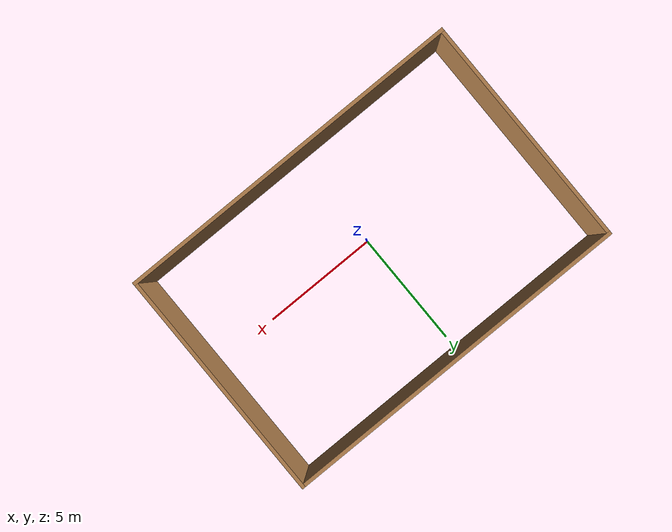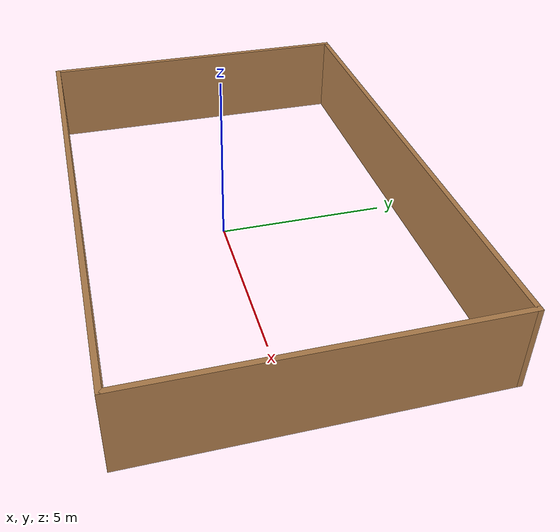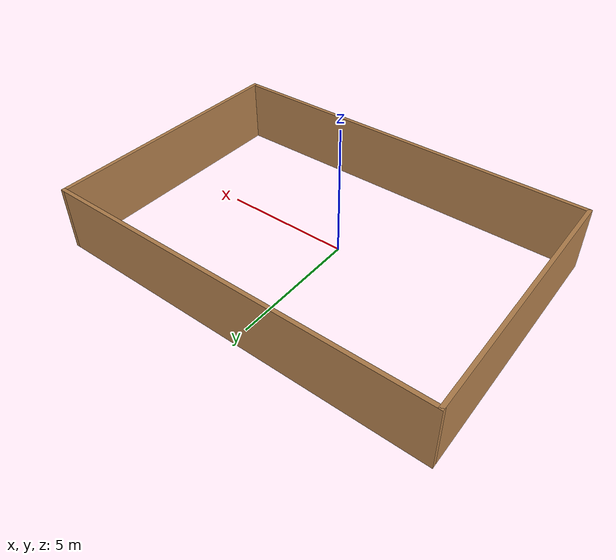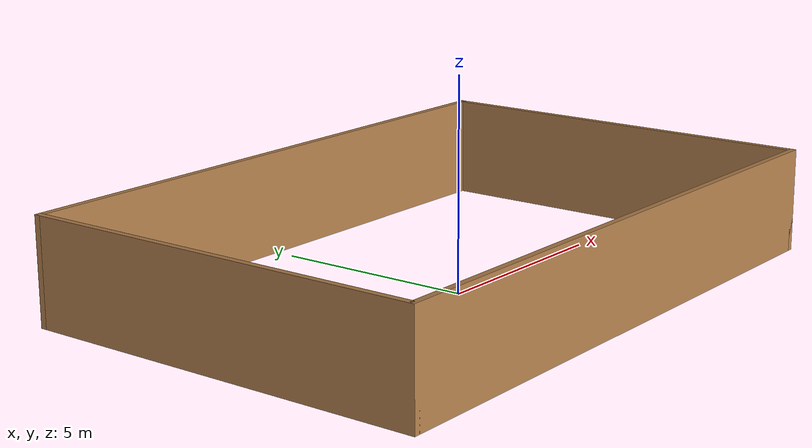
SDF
<?xml version='1.0'?>
<sdf version='1.7'>
  <model name='Room'>
    <pose>0.276747 0.641409 0 0 -0 0</pose>
    <link name='Wall_19'>
      <collision name='Wall_19_Collision'>
        <geometry>
          <box>
            <size>15 0.15 2.5</size>
          </box>
        </geometry>
        <pose>0 0 1.25 0 -0 0</pose>
      </collision>
      <visual name='Wall_19_Visual'>
        <pose>0 0 1.25 0 -0 0</pose>
        <geometry>
          <box>
            <size>15 0.15 2.5</size>
          </box>
        </geometry>
        <material>
          <script>
            <uri>file://media/materials/scripts/gazebo.material</uri>
            <name>Gazebo/Wood</name>
          </script>
          <ambient>1 1 1 1</ambient>
        </material>
        <meta>
          <layer>0</layer>
        </meta>
      </visual>
      <pose>-0 -4.925 0 0 -0 0</pose>
    </link>
    <link name='Wall_23'>
      <collision name='Wall_23_Collision'>
        <geometry>
          <box>
            <size>10 0.15 2.5</size>
          </box>
        </geometry>
        <pose>0 0 1.25 0 -0 0</pose>
      </collision>
      <visual name='Wall_23_Visual'>
        <pose>0 0 1.25 0 -0 0</pose>
        <geometry>
          <box>
            <size>10 0.15 2.5</size>
          </box>
        </geometry>
        <material>
          <script>
            <uri>file://media/materials/scripts/gazebo.material</uri>
            <name>Gazebo/Wood</name>
          </script>
          <ambient>1 1 1 1</ambient>
        </material>
        <meta>
          <layer>0</layer>
        </meta>
      </visual>
      <pose>7.425 0 0 0 -0 1.5708</pose>
    </link>
    <link name='Wall_24'>
      <collision name='Wall_24_Collision'>
        <geometry>
          <box>
            <size>15 0.15 2.5</size>
          </box>
        </geometry>
        <pose>0 0 1.25 0 -0 0</pose>
      </collision>
      <visual name='Wall_24_Visual'>
        <pose>0 0 1.25 0 -0 0</pose>
        <geometry>
          <box>
            <size>15 0.15 2.5</size>
          </box>
        </geometry>
        <material>
          <script>
            <uri>file://media/materials/scripts/gazebo.material</uri>
            <name>Gazebo/Wood</name>
          </script>
          <ambient>1 1 1 1</ambient>
        </material>
        <meta>
          <layer>0</layer>
        </meta>
      </visual>
      <pose>-0 4.925 0 0 -0 3.14159</pose>
    </link>
    <link name='Wall_25'>
      <collision name='Wall_25_Collision'>
        <geometry>
          <box>
            <size>10 0.15 2.5</size>
          </box>
        </geometry>
        <pose>0 0 1.25 0 -0 0</pose>
      </collision>
      <visual name='Wall_25_Visual'>
        <pose>0 0 1.25 0 -0 0</pose>
        <geometry>
          <box>
            <size>10 0.15 2.5</size>
          </box>
        </geometry>
        <material>
          <script>
            <uri>file://media/materials/scripts/gazebo.material</uri>
            <name>Gazebo/Wood</name>
          </script>
          <ambient>1 1 1 1</ambient>
        </material>
        <meta>
          <layer>0</layer>
        </meta>
      </visual>
      <pose>-7.425 0 0 0 -0 -1.5708</pose>
    </link>
    <static>1</static>
  </model>
</sdf>
